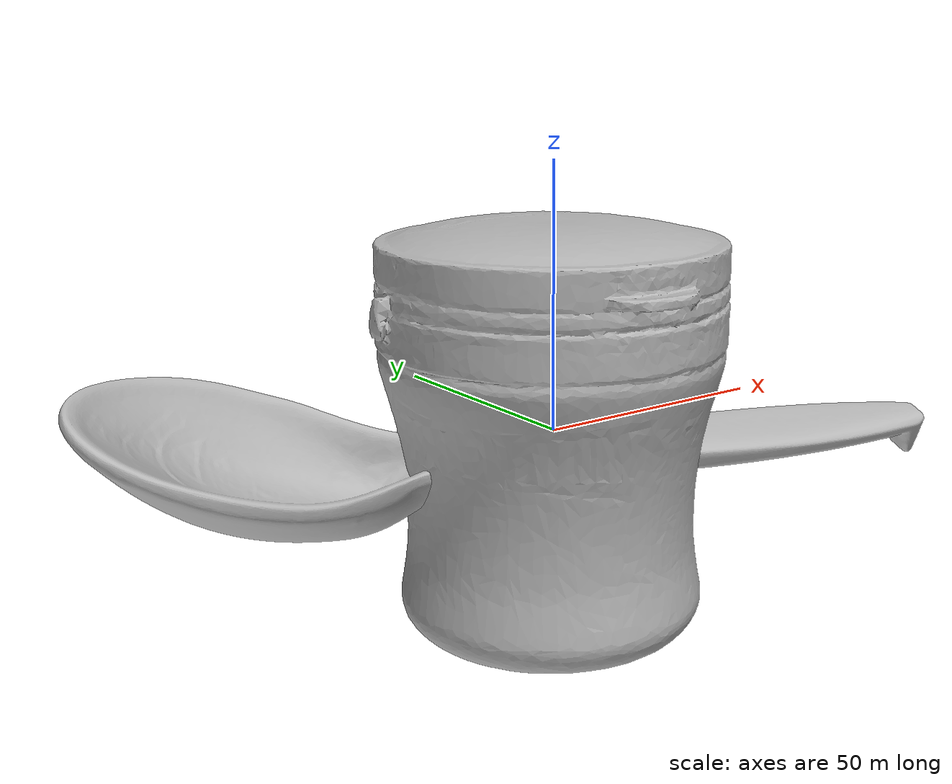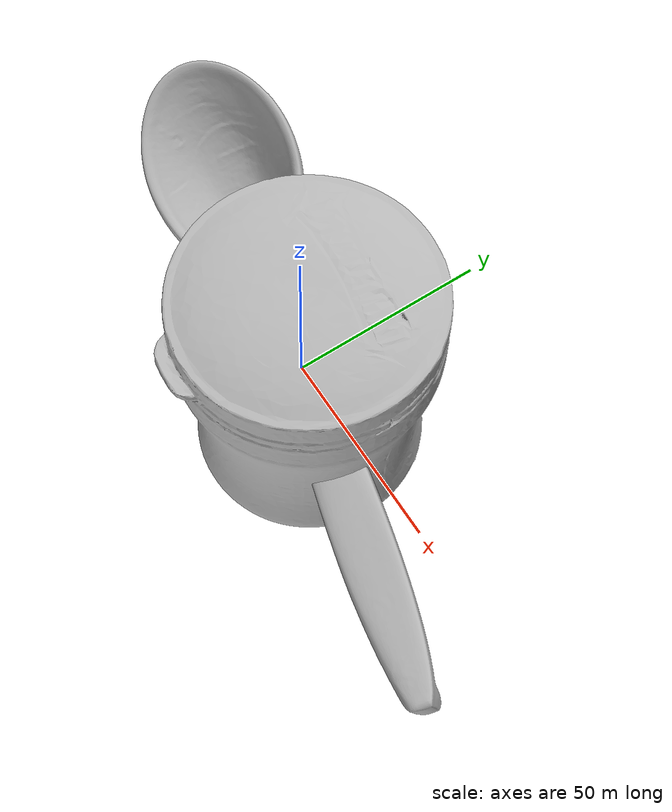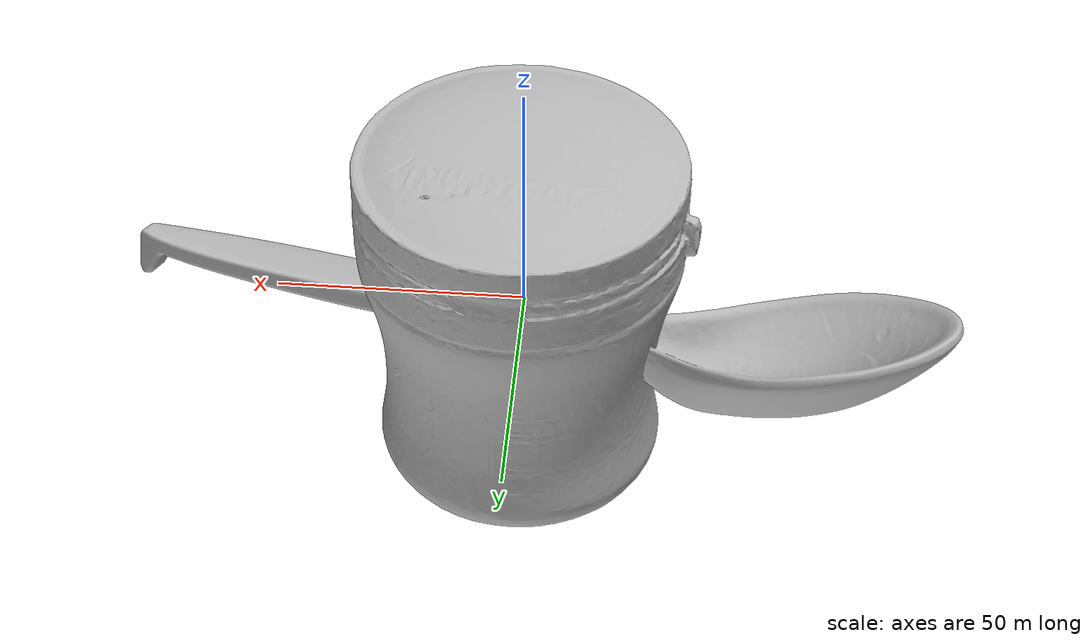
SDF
<sdf version="1.4">
 <world name="default">
  <light name="light1" type="point">
   <pose>0 0 1 0 0 0</pose>
   <diffuse>3 3 3 1</diffuse>
   <specular>3 3 3 1</specular>
  </light>
  <light name="light2" type="point">
   <pose>0 0.5 2 0 0 0</pose>
   <diffuse>1 1 1 1</diffuse>
   <specular>1 1 1 1</specular>
  </light>
  <light name="light3" type="point">
   <pose>0 0.5 2 0 0 0</pose>
   <diffuse>3 3 3 1</diffuse>
   <specular>3 3 3 1</specular>
  </light>
  <scene><ambient>0.7 0.7 0.7</ambient></scene>
  <model name="bottle1">
   <link name="link_bottle1">
    <collision name="default">
     <geometry>
      <mesh><uri>model://green_arrow/collision_meshes/collision.obj</uri><scale>1.0 1.0 1.0</scale></mesh>
     </geometry>
     <surface>
      <friction><ode><mu>0.5</mu><mu2>0.5</mu2></ode></friction>
      <contact><ode><max_vel>0</max_vel><min_depth>0.0001</min_depth><kp>1e8</kp></ode></contact>
     </surface>
    </collision>
    <visual name="default">
     <geometry>
      <mesh><uri>model://green_arrow/visual_meshes/visual.dae</uri><scale>1.0 1.0 1.0</scale></mesh>
     </geometry>
    </visual>
    <inertial>
     <mass>0.31872013211250305</mass>
     <pose>0.0005358478520065546 -0.0008270691032521427 0.002210969803854823 -0.06332250060756175 0.012985582117300467 0.6741007804522225</pose>
     <inertia>
      <ixx>0.00023120124</ixx>
      <iyy>0.000230851</iyy>
      <izz>0.0001492862</izz>
      <ixy>0</ixy>
      <ixz>0</ixz>
      <iyz>0</iyz>
     </inertia>
    </inertial>
   </link>
   <pose>0.265337735414505 0.36875206232070923 0.03903083875775337 0.03851803485117128 0.02462875794734171 2.3365575925670767</pose>
  </model>
  <model name="bottle2">
   <link name="link_bottle2">
    <collision name="default">
     <geometry>
      <mesh><uri>model://pigeon/collision_meshes/collision.obj</uri><scale>1.0 1.0 1.0</scale></mesh>
     </geometry>
     <surface>
      <friction><ode><mu>0.5</mu><mu2>0.5</mu2></ode></friction>
      <contact><ode><max_vel>0</max_vel><min_depth>0.0001</min_depth><kp>1e8</kp></ode></contact>
     </surface>
    </collision>
    <visual name="default">
     <geometry><mesh><uri>model://pigeon/visual_meshes/visual.dae</uri><scale>1.0 1.0 1.0</scale></mesh></geometry>
    </visual>
    <inertial>
     <mass>0.5279804468154907</mass>
     <pose>-9.675472392700613e-05 -0.0001927677367348224 -0.01593620702624321 -0.011704407495178063 -0.0012978199512556723 -0.04198835484465517</pose>
     <inertia>
      <ixx>0.0013198232</ixx>
      <iyy>0.0014089285</iyy>
      <izz>0.000271492</izz>
      <ixy>0</ixy>
      <ixz>0</ixz>
      <iyz>0</iyz>
     </inertia>
    </inertial>
   </link>
   <pose>-0.07169750332832336 -0.03768360987305641 0.09864477813243866 2.4793093671581635e-05 3.374693654822286e-06 1.699261878459298</pose>
  </model>
  <model name="silverware1">
   <link name="link_silverware1">
    <collision name="default">
     <geometry>
      <mesh><uri>model://doraemon_spoon/collision_meshes/collision.obj</uri><scale>1.0 1.0 1.0</scale></mesh>
     </geometry>
     <surface>
      <friction><ode><mu>0.5</mu><mu2>0.5</mu2></ode></friction>
      <contact><ode><max_vel>0</max_vel><min_depth>0.0001</min_depth><kp>1e8</kp></ode></contact>
     </surface>
    </collision>
    <visual name="default">
     <geometry>
      <mesh><uri>model://doraemon_spoon/visual_meshes/visual.dae</uri><scale>1.0 1.0 1.0</scale></mesh>
     </geometry>
    </visual>
    <inertial>
     <mass>0.014849366620182991</mass>
     <pose>-0.022165074944496155 -0.0006374582299031317 -0.0033325457479804754 -0.009146985479672626 0.07380416127774835 -0.014123827206003371</pose>
     <inertia>
      <ixx>1.1631438e-06</ixx>
      <iyy>3.3035012e-05</iyy>
      <izz>3.359665e-05</izz>
      <ixy>0</ixy>
      <ixz>0</ixz>
      <iyz>0</iyz>
     </inertia>
    </inertial>
   </link>
   <pose>-0.017115343362092972 -0.13071861863136292 0.01473933830857277 0.27903151402009885 -0.010337006760845287 -0.24287002376605676</pose>
  </model>
  <model name="stationery1">
   <link name="link_stationery1">
    <collision name="default">
     <geometry>
      <mesh><uri>model://correction_fuid/collision_meshes/collision.obj</uri><scale>1.0 1.0 1.0</scale></mesh>
     </geometry>
     <surface>
      <friction><ode><mu>0.5</mu><mu2>0.5</mu2></ode></friction>
      <contact><ode><max_vel>0</max_vel><min_depth>0.0001</min_depth><kp>1e8</kp></ode></contact>
     </surface>
    </collision>
    <visual name="default">
     <geometry>
      <mesh><uri>model://correction_fuid/visual_meshes/visual.dae</uri><scale>1.0 1.0 1.0</scale></mesh>
     </geometry>
    </visual>
    <inertial>
     <mass>0.03422689810395241</mass>
     <pose>-0.00012557733862195164 -0.0009722901741042733 -0.001618212671019137 -0.010846609605282003 0.019488228935667613 -0.015992456651572746</pose>
     <inertia>
      <ixx>3.3149332e-05</ixx>
      <iyy>2.0062398e-06</iyy>
      <izz>3.4012115e-05</izz>
      <ixy>0</ixy>
      <ixz>0</ixz>
      <iyz>0</iyz>
     </inertia>
    </inertial>
   </link>
   <pose>-0.0449393168091774 0.43090030550956726 0.007912645116448402 -3.0916718667419096 0.02295675712758303 -1.6798926077958123</pose>
  </model>
  <model name="bowl1">
   <link name="link_bowl1">
    <collision name="default">
     <geometry>
      <mesh><uri>model://doraemon_bowl/collision_meshes/collision.obj</uri><scale>1.0 1.0 1.0</scale></mesh>
     </geometry>
     <surface>
      <friction><ode><mu>0.5</mu><mu2>0.5</mu2></ode></friction>
      <contact><ode><max_vel>0</max_vel><min_depth>0.0001</min_depth><kp>1e8</kp></ode></contact>
     </surface>
    </collision>
    <visual name="default">
     <geometry>
      <mesh><uri>model://doraemon_bowl/visual_meshes/visual.dae</uri><scale>1.0 1.0 1.0</scale></mesh>
     </geometry>
    </visual>
    <inertial>
     <mass>0.10659078508615494</mass>
     <pose>-0.014629560522735119 0.00048571196384727955 -0.002086488762870431 -0.00509398386316645 -0.10568401530986889 -0.026426397124795446</pose>
     <inertia>
      <ixx>0.00014780516</ixx>
      <iyy>0.00019451023</iyy>
      <izz>0.00028617028</izz>
      <ixy>0</ixy>
      <ixz>0</ixz>
      <iyz>0</iyz>
     </inertia>
    </inertial>
   </link>
   <pose>0.2082231044769287 0.2629668116569519 0.025905493646860123 0.008593321526301283 0.006343546164740245 -1.470817035442834</pose>
  </model>
  <model name="cup1">
   <link name="link_cup1">
    <collision name="default">
     <geometry>
      <mesh><uri>model://doraemon_cup/collision_meshes/collision.obj</uri><scale>1.0 1.0 1.0</scale></mesh>
     </geometry>
     <surface>
      <friction><ode><mu>0.5</mu><mu2>0.5</mu2></ode></friction>
      <contact><ode><max_vel>0</max_vel><min_depth>0.0001</min_depth><kp>1e8</kp></ode></contact>
     </surface>
    </collision>
    <visual name="default">
     <geometry>
      <mesh><uri>model://doraemon_cup/visual_meshes/visual.dae</uri><scale>1.0 1.0 1.0</scale></mesh>
     </geometry>
    </visual>
    <inertial>
     <mass>0.07019124925136566</mass>
     <pose>-0.0003292977053206414 -0.0016633619088679552 -0.0022522560320794582 0.19498543632694942 -0.013693723781048914 -0.3205469926711019</pose>
     <inertia>
      <ixx>9.599299e-05</ixx>
      <iyy>9.2830705e-05</iyy>
      <izz>7.5864096e-05</izz>
      <ixy>0</ixy>
      <ixz>0</ixz>
      <iyz>0</iyz>
     </inertia>
    </inertial>
   </link>
   <pose>0.2142900824546814 0.07286665588617325 0.0462324433028698 -0.011774687738678596 -0.008808295651115964 1.8958537801412019</pose>
  </model>
  <model name="plate1">
   <link name="link_plate1">
    <collision name="default">
     <geometry>
      <mesh><uri>model://hello_kitty_plate/collision_meshes/collision.obj</uri><scale>1.0 1.0 1.0</scale></mesh>
     </geometry>
     <surface>
      <friction><ode><mu>0.5</mu><mu2>0.5</mu2></ode></friction>
      <contact><ode><max_vel>0</max_vel><min_depth>0.0001</min_depth><kp>1e8</kp></ode></contact>
     </surface>
    </collision>
    <visual name="default">
     <geometry>
      <mesh><uri>model://hello_kitty_plate/visual_meshes/visual.dae</uri><scale>1.0 1.0 1.0</scale></mesh>
     </geometry>
    </visual>
    <inertial>
     <mass>0.03849242627620697</mass>
     <pose>0.007314295973628759 0.00028937432216480374 -0.0027947183698415756 -0.00010431794154861864 -0.007054443662422379 -0.014449020506613262</pose>
     <inertia>
      <ixx>7.4224925e-05</ixx>
      <iyy>0.00014008483</iyy>
      <izz>0.00021270475</izz>
      <ixy>0</ixy>
      <ixz>0</ixz>
      <iyz>0</iyz>
     </inertia>
    </inertial>
   </link>
   <pose>0.03199731186032295 -0.29329538345336914 0.008291445672512054 0.00046595339501071664 0.004173170649355018 1.6424615152774011</pose>
  </model>
  <model name="box4">
   <link name="link_box4">
    <collision name="default">
     <geometry>
      <mesh><uri>model://wooden_puzzle2/collision_meshes/collision.obj</uri><scale>1.0 1.0 1.0</scale></mesh>
     </geometry>
     <surface>
      <friction><ode><mu>0.5</mu><mu2>0.5</mu2></ode></friction>
      <contact><ode><max_vel>0</max_vel><min_depth>0.0001</min_depth><kp>1e8</kp></ode></contact>
     </surface>
    </collision>
    <visual name="default">
     <geometry>
      <mesh><uri>model://wooden_puzzle2/visual_meshes/visual.dae</uri><scale>1.0 1.0 1.0</scale></mesh>
     </geometry>
    </visual>
    <inertial>
     <mass>0.023858843371272087</mass>
     <pose>2.7402536943554878e-05 4.997663199901581e-05 6.587122334167361e-05 -0.1920347142936951 0.6112821219690274 -0.6338705729322873</pose>
     <inertia>
      <ixx>4.4351036e-06</ixx>
      <iyy>4.557319e-06</iyy>
      <izz>4.4924864e-06</izz>
      <ixy>0</ixy>
      <ixz>0</ixz>
      <iyz>0</iyz>
     </inertia>
    </inertial>
   </link>
   <pose>0.24643534421920776 -0.05512073636054993 0.01691773347556591 0.020848994588168326 0.0007206989366257309 2.024493691826834</pose>
  </model>
  <physics type="ode">
   <max_contacts>50</max_contacts>
   <ode>
    <solver><type>quick</type><iters>75</iters></solver>
    <constraints>
     <contact_max_correcting_vel>0</contact_max_correcting_vel>
     <contact_surface_layer>0</contact_surface_layer>
    </constraints>
   </ode>
  </physics>
 </world>
</sdf>
